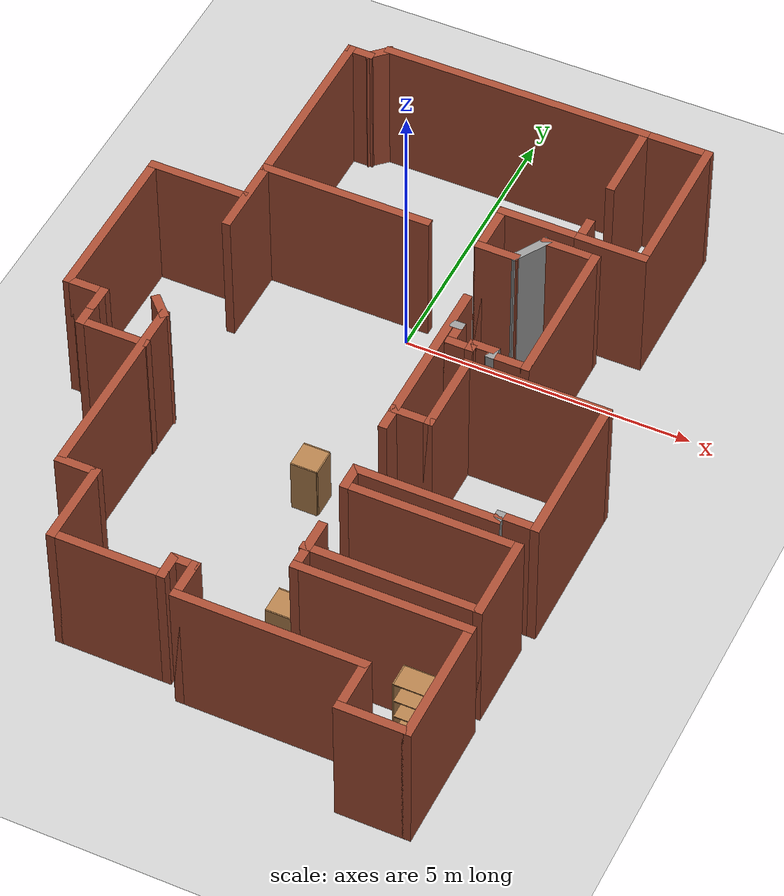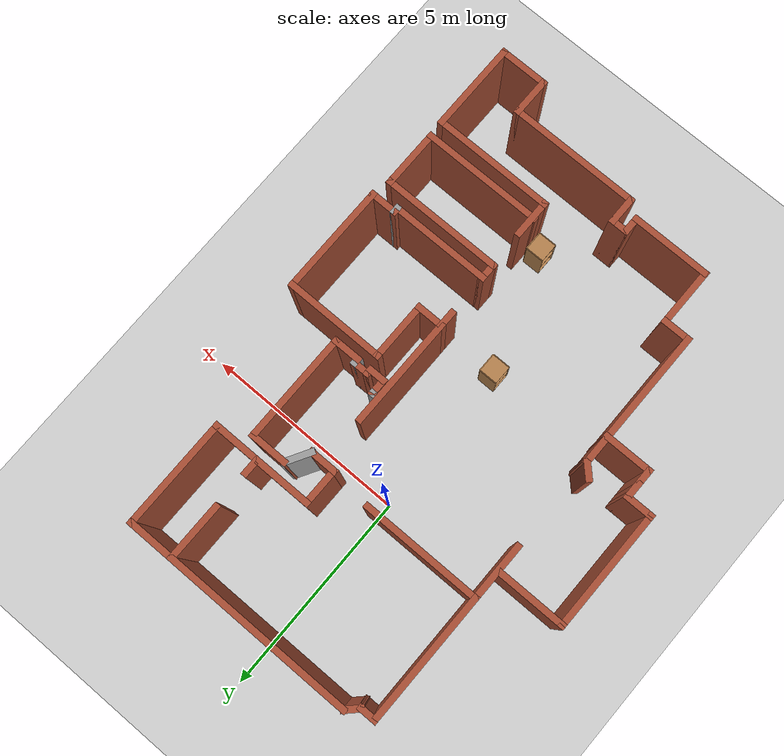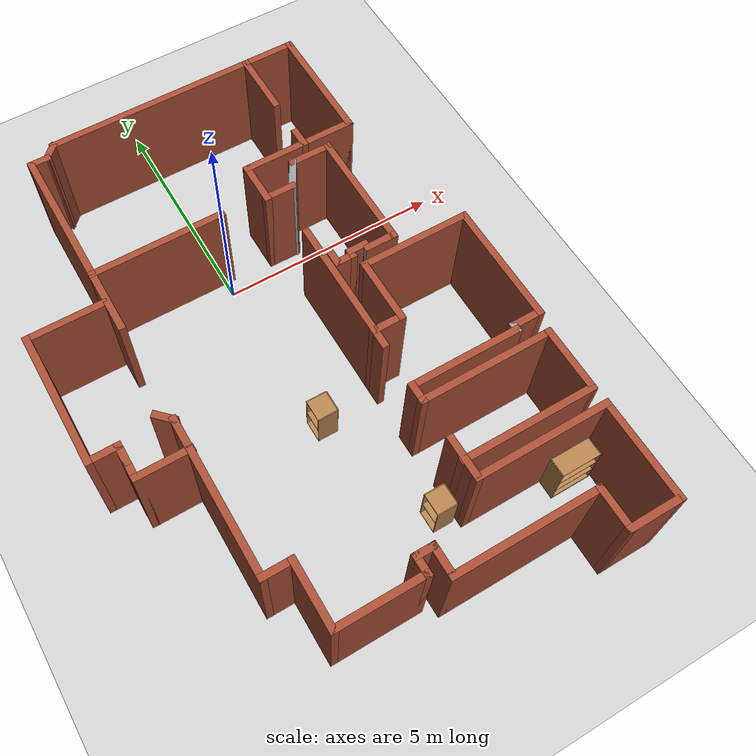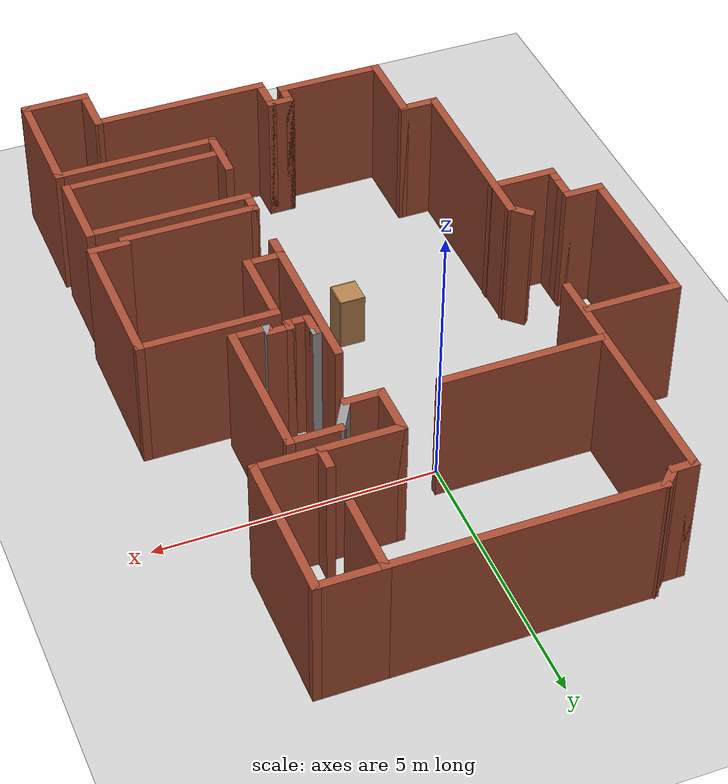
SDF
<sdf version="1.6">
 <world name="default">
  <model name="ground_plane">
   <static>1</static>
   <link name="link">
    <collision name="collision">
     <geometry><plane><normal>0 0 1</normal><size>100 100</size></plane></geometry>
     <surface><friction><ode><mu>100</mu><mu2>50</mu2></ode></friction></surface>
    </collision>
    <visual name="visual">
     <cast_shadows>0</cast_shadows>
     <geometry><plane><normal>0 0 1</normal><size>100 100</size></plane></geometry>
     <material>
      <script><uri>file://media/materials/scripts/gazebo.material</uri><name>Gazebo/Grey</name></script>
     </material>
    </visual>
   </link>
  </model>
  <model name="map_9">
   <pose>0.012902 -2.60359 0 0 -0 0</pose>
   <link name="Wall_0">
    <collision name="Wall_0_Collision">
     <geometry><box><size>3.5 0.15 2.5</size></box></geometry>
     <pose>0 0 1.25 0 -0 0</pose>
    </collision>
    <visual name="Wall_0_Visual">
     <pose>0 0 1.25 0 -0 0</pose>
     <geometry><box><size>3.5 0.15 2.5</size></box></geometry>
     <material>
      <script><uri>file://media/materials/scripts/gazebo.material</uri><name>Gazebo/Bricks</name></script>
      <ambient>1 1 1 1</ambient>
     </material>
     <meta><layer>0</layer></meta>
    </visual>
    <pose>-2.69238 -2.26079 0 0 -0 -1.5708</pose>
   </link>
   <link name="Wall_1">
    <collision name="Wall_1_Collision">
     <geometry><box><size>0.75 0.15 2.5</size></box></geometry>
     <pose>0 0 1.25 0 -0 0</pose>
    </collision>
    <visual name="Wall_1_Visual">
     <pose>0 0 1.25 0 -0 0</pose>
     <geometry><box><size>0.75 0.15 2.5</size></box></geometry>
     <material>
      <script><uri>file://media/materials/scripts/gazebo.material</uri><name>Gazebo/Bricks</name></script>
      <ambient>1 1 1 1</ambient>
     </material>
     <meta><layer>0</layer></meta>
    </visual>
    <pose>-2.39238 -3.93579 0 0 -0 0</pose>
   </link>
   <link name="Wall_10">
    <collision name="Wall_10_Collision">
     <geometry><box><size>1.25 0.15 2.5</size></box></geometry>
     <pose>0 0 1.25 0 -0 0</pose>
    </collision>
    <visual name="Wall_10_Visual">
     <pose>0 0 1.25 0 -0 0</pose>
     <geometry><box><size>1.25 0.15 2.5</size></box></geometry>
     <material>
      <script><uri>file://media/materials/scripts/gazebo.material</uri><name>Gazebo/Bricks</name></script>
      <ambient>1 1 1 1</ambient>
     </material>
     <meta><layer>0</layer></meta>
    </visual>
    <pose>3.75761 -6.38579 0 0 -0 0</pose>
   </link>
   <link name="Wall_11">
    <collision name="Wall_11_Collision">
     <geometry><box><size>2.25 0.15 2.5</size></box></geometry>
     <pose>0 0 1.25 0 -0 0</pose>
    </collision>
    <visual name="Wall_11_Visual">
     <pose>0 0 1.25 0 -0 0</pose>
     <geometry><box><size>2.25 0.15 2.5</size></box></geometry>
     <material>
      <script><uri>file://media/materials/scripts/gazebo.material</uri><name>Gazebo/Bricks</name></script>
      <ambient>1 1 1 1</ambient>
     </material>
     <meta><layer>0</layer></meta>
    </visual>
    <pose>4.30762 -5.33579 0 0 -0 1.5708</pose>
   </link>
   <link name="Wall_12">
    <collision name="Wall_12_Collision">
     <geometry><box><size>3 0.15 2.5</size></box></geometry>
     <pose>0 0 1.25 0 -0 0</pose>
    </collision>
    <visual name="Wall_12_Visual">
     <pose>0 0 1.25 0 -0 0</pose>
     <geometry><box><size>3 0.15 2.5</size></box></geometry>
     <material>
      <script><uri>file://media/materials/scripts/gazebo.material</uri><name>Gazebo/Bricks</name></script>
      <ambient>1 1 1 1</ambient>
     </material>
     <meta><layer>0</layer></meta>
    </visual>
    <pose>2.88261 -4.28579 0 0 -0 3.14159</pose>
   </link>
   <link name="Wall_13">
    <collision name="Wall_13_Collision">
     <geometry><box><size>1 0.15 2.5</size></box></geometry>
     <pose>0 0 1.25 0 -0 0</pose>
    </collision>
    <visual name="Wall_13_Visual">
     <pose>0 0 1.25 0 -0 0</pose>
     <geometry><box><size>1 0.15 2.5</size></box></geometry>
     <material>
      <script><uri>file://media/materials/scripts/gazebo.material</uri><name>Gazebo/Bricks</name></script>
      <ambient>1 1 1 1</ambient>
     </material>
     <meta><layer>0</layer></meta>
    </visual>
    <pose>1.45762 -3.86079 0 0 -0 1.5708</pose>
   </link>
   <link name="Wall_15">
    <collision name="Wall_15_Collision">
     <geometry><box><size>3 0.15 2.5</size></box></geometry>
     <pose>0 0 1.25 0 -0 0</pose>
    </collision>
    <visual name="Wall_15_Visual">
     <pose>0 0 1.25 0 -0 0</pose>
     <geometry><box><size>3 0.15 2.5</size></box></geometry>
     <material>
      <script><uri>file://media/materials/scripts/gazebo.material</uri><name>Gazebo/Bricks</name></script>
      <ambient>1 1 1 1</ambient>
     </material>
     <meta><layer>0</layer></meta>
    </visual>
    <pose>2.85259 -3.89428 0 0 -0 0</pose>
   </link>
   <link name="Wall_16">
    <collision name="Wall_16_Collision">
     <geometry><box><size>1.5 0.15 2.5</size></box></geometry>
     <pose>0 0 1.25 0 -0 0</pose>
    </collision>
    <visual name="Wall_16_Visual">
     <pose>0 0 1.25 0 -0 0</pose>
     <geometry><box><size>1.5 0.15 2.5</size></box></geometry>
     <material>
      <script><uri>file://media/materials/scripts/gazebo.material</uri><name>Gazebo/Bricks</name></script>
      <ambient>1 1 1 1</ambient>
     </material>
     <meta><layer>0</layer></meta>
    </visual>
    <pose>4.2776 -3.21928 0 0 -0 1.5708</pose>
   </link>
   <link name="Wall_17">
    <collision name="Wall_17_Collision">
     <geometry><box><size>3 0.15 2.5</size></box></geometry>
     <pose>0 0 1.25 0 -0 0</pose>
    </collision>
    <visual name="Wall_17_Visual">
     <pose>0 0 1.25 0 -0 0</pose>
     <geometry><box><size>3 0.15 2.5</size></box></geometry>
     <material>
      <script><uri>file://media/materials/scripts/gazebo.material</uri><name>Gazebo/Bricks</name></script>
      <ambient>1 1 1 1</ambient>
     </material>
     <meta><layer>0</layer></meta>
    </visual>
    <pose>2.85259 -2.54428 0 0 -0 3.14159</pose>
   </link>
   <link name="Wall_18">
    <collision name="Wall_18_Collision">
     <geometry><box><size>0.5 0.15 2.5</size></box></geometry>
     <pose>0 0 1.25 0 -0 0</pose>
    </collision>
    <visual name="Wall_18_Visual">
     <pose>0 0 1.25 0 -0 0</pose>
     <geometry><box><size>0.5 0.15 2.5</size></box></geometry>
     <material>
      <script><uri>file://media/materials/scripts/gazebo.material</uri><name>Gazebo/Bricks</name></script>
      <ambient>1 1 1 1</ambient>
     </material>
     <meta><layer>0</layer></meta>
    </visual>
    <pose>1.42759 -2.36928 0 0 -0 1.5708</pose>
   </link>
   <link name="Wall_19">
    <collision name="Wall_19_Collision">
     <geometry><box><size>2.5 0.15 2.5</size></box></geometry>
     <pose>0 0 1.25 0 -0 0</pose>
    </collision>
    <visual name="Wall_19_Visual">
     <pose>0 0 1.25 0 -0 0</pose>
     <geometry><box><size>2.5 0.15 2.5</size></box></geometry>
     <material>
      <script><uri>file://media/materials/scripts/gazebo.material</uri><name>Gazebo/Bricks</name></script>
      <ambient>1 1 1 1</ambient>
     </material>
     <meta><layer>0</layer></meta>
    </visual>
    <pose>2.60259 -2.19428 0 0 -0 0</pose>
   </link>
   <link name="Wall_2">
    <collision name="Wall_2_Collision">
     <geometry><box><size>1.5 0.15 2.5</size></box></geometry>
     <pose>0 0 1.25 0 -0 0</pose>
    </collision>
    <visual name="Wall_2_Visual">
     <pose>0 0 1.25 0 -0 0</pose>
     <geometry><box><size>1.5 0.15 2.5</size></box></geometry>
     <material>
      <script><uri>file://media/materials/scripts/gazebo.material</uri><name>Gazebo/Bricks</name></script>
      <ambient>1 1 1 1</ambient>
     </material>
     <meta><layer>0</layer></meta>
    </visual>
    <pose>-2.09239 -4.61079 0 0 -0 -1.5708</pose>
   </link>
   <link name="Wall_20">
    <collision name="Wall_20_Collision">
     <geometry><box><size>0.25 0.15 2.5</size></box></geometry>
     <pose>0 0 1.25 0 -0 0</pose>
    </collision>
    <visual name="Wall_20_Visual">
     <pose>0 0 1.25 0 -0 0</pose>
     <geometry><box><size>0.25 0.15 2.5</size></box></geometry>
     <material>
      <script><uri>file://media/materials/scripts/gazebo.material</uri><name>Gazebo/Grey</name></script>
      <ambient>1 1 1 1</ambient>
     </material>
     <meta><layer>0</layer></meta>
    </visual>
    <pose>3.7776 -2.14428 0 0 -0 1.5708</pose>
   </link>
   <link name="Wall_21">
    <collision name="Wall_21_Collision">
     <geometry><box><size>0.75 0.15 2.5</size></box></geometry>
     <pose>0 0 1.25 0 -0 0</pose>
    </collision>
    <visual name="Wall_21_Visual">
     <pose>0 0 1.25 0 -0 0</pose>
     <geometry><box><size>0.75 0.15 2.5</size></box></geometry>
     <material>
      <script><uri>file://media/materials/scripts/gazebo.material</uri><name>Gazebo/Bricks</name></script>
      <ambient>1 1 1 1</ambient>
     </material>
     <meta><layer>0</layer></meta>
    </visual>
    <pose>4.07759 -2.09428 0 0 -0 0</pose>
   </link>
   <link name="Wall_22">
    <collision name="Wall_22_Collision">
     <geometry><box><size>2.75 0.15 2.5</size></box></geometry>
     <pose>0 0 1.25 0 -0 0</pose>
    </collision>
    <visual name="Wall_22_Visual">
     <pose>0 0 1.25 0 -0 0</pose>
     <geometry><box><size>2.75 0.15 2.5</size></box></geometry>
     <material>
      <script><uri>file://media/materials/scripts/gazebo.material</uri><name>Gazebo/Bricks</name></script>
      <ambient>1 1 1 1</ambient>
     </material>
     <meta><layer>0</layer></meta>
    </visual>
    <pose>4.3776 -0.794283 0 0 -0 1.5708</pose>
   </link>
   <link name="Wall_23">
    <collision name="Wall_23_Collision">
     <geometry><box><size>2.5 0.15 2.5</size></box></geometry>
     <pose>0 0 1.25 0 -0 0</pose>
    </collision>
    <visual name="Wall_23_Visual">
     <pose>0 0 1.25 0 -0 0</pose>
     <geometry><box><size>2.5 0.15 2.5</size></box></geometry>
     <material>
      <script><uri>file://media/materials/scripts/gazebo.material</uri><name>Gazebo/Bricks</name></script>
      <ambient>1 1 1 1</ambient>
     </material>
     <meta><layer>0</layer></meta>
    </visual>
    <pose>3.2026 0.505717 0 0 -0 3.14159</pose>
   </link>
   <link name="Wall_24">
    <collision name="Wall_24_Collision">
     <geometry><box><size>1.5 0.15 2.5</size></box></geometry>
     <pose>0 0 1.25 0 -0 0</pose>
    </collision>
    <visual name="Wall_24_Visual">
     <pose>0 0 1.25 0 -0 0</pose>
     <geometry><box><size>1.5 0.15 2.5</size></box></geometry>
     <material>
      <script><uri>file://media/materials/scripts/gazebo.material</uri><name>Gazebo/Bricks</name></script>
      <ambient>1 1 1 1</ambient>
     </material>
     <meta><layer>0</layer></meta>
    </visual>
    <pose>2.0276 -0.169283 0 0 -0 -1.5708</pose>
   </link>
   <link name="Wall_25">
    <collision name="Wall_25_Collision">
     <geometry><box><size>0.75 0.15 2.5</size></box></geometry>
     <pose>0 0 1.25 0 -0 0</pose>
    </collision>
    <visual name="Wall_25_Visual">
     <pose>0 0 1.25 0 -0 0</pose>
     <geometry><box><size>0.75 0.15 2.5</size></box></geometry>
     <material>
      <script><uri>file://media/materials/scripts/gazebo.material</uri><name>Gazebo/Bricks</name></script>
      <ambient>1 1 1 1</ambient>
     </material>
     <meta><layer>0</layer></meta>
    </visual>
    <pose>1.72759 -0.844283 0 0 -0 3.14159</pose>
   </link>
   <link name="Wall_26">
    <collision name="Wall_26_Collision">
     <geometry><box><size>0.5 0.15 2.5</size></box></geometry>
     <pose>0 0 1.25 0 -0 0</pose>
    </collision>
    <visual name="Wall_26_Visual">
     <pose>0 0 1.25 0 -0 0</pose>
     <geometry><box><size>0.5 0.15 2.5</size></box></geometry>
     <material>
      <script><uri>file://media/materials/scripts/gazebo.material</uri><name>Gazebo/Bricks</name></script>
      <ambient>1 1 1 1</ambient>
     </material>
     <meta><layer>0</layer></meta>
    </visual>
    <pose>1.42759 -1.01928 0 0 -0 -1.5708</pose>
   </link>
   <link name="Wall_28">
    <collision name="Wall_28_Collision">
     <geometry><box><size>2.75 0.15 2.5</size></box></geometry>
     <pose>0 0 1.25 0 -0 0</pose>
    </collision>
    <visual name="Wall_28_Visual">
     <pose>0 0 1.25 0 -0 0</pose>
     <geometry><box><size>2.75 0.15 2.5</size></box></geometry>
     <material>
      <script><uri>file://media/materials/scripts/gazebo.material</uri><name>Gazebo/Bricks</name></script>
      <ambient>1 1 1 1</ambient>
     </material>
     <meta><layer>0</layer></meta>
    </visual>
    <pose>1.42759 0.455717 0 0 -0 1.5708</pose>
   </link>
   <link name="Wall_3">
    <collision name="Wall_3_Collision">
     <geometry><box><size>2 0.15 2.5</size></box></geometry>
     <pose>0 0 1.25 0 -0 0</pose>
    </collision>
    <visual name="Wall_3_Visual">
     <pose>0 0 1.25 0 -0 0</pose>
     <geometry><box><size>2 0.15 2.5</size></box></geometry>
     <material>
      <script><uri>file://media/materials/scripts/gazebo.material</uri><name>Gazebo/Bricks</name></script>
      <ambient>1 1 1 1</ambient>
     </material>
     <meta><layer>0</layer></meta>
    </visual>
    <pose>-1.16738 -5.28579 0 0 -0 0</pose>
   </link>
   <link name="Wall_30">
    <collision name="Wall_30_Collision">
     <geometry><box><size>0.25 0.15 2.5</size></box></geometry>
     <pose>0 0 1.25 0 -0 0</pose>
    </collision>
    <visual name="Wall_30_Visual">
     <pose>0 0 1.25 0 -0 0</pose>
     <geometry><box><size>0.25 0.15 2.5</size></box></geometry>
     <material>
      <script><uri>file://media/materials/scripts/gazebo.material</uri><name>Gazebo/Grey</name></script>
      <ambient>1 1 1 1</ambient>
     </material>
     <meta><layer>0</layer></meta>
    </visual>
    <pose>1.53794 1.17434 0 0 -0 0</pose>
   </link>
   <link name="Wall_31">
    <collision name="Wall_31_Collision">
     <geometry><box><size>0.5 0.15 2.5</size></box></geometry>
     <pose>0 0 1.25 0 -0 0</pose>
    </collision>
    <visual name="Wall_31_Visual">
     <pose>0 0 1.25 0 -0 0</pose>
     <geometry><box><size>0.5 0.15 2.5</size></box></geometry>
     <material>
      <script><uri>file://media/materials/scripts/gazebo.material</uri><name>Gazebo/Bricks</name></script>
      <ambient>1 1 1 1</ambient>
     </material>
     <meta><layer>0</layer></meta>
    </visual>
    <pose>1.58794 0.999337 0 0 -0 -1.5708</pose>
   </link>
   <link name="Wall_32">
    <collision name="Wall_32_Collision">
     <geometry><box><size>0.5 0.15 2.5</size></box></geometry>
     <pose>0 0 1.25 0 -0 0</pose>
    </collision>
    <visual name="Wall_32_Visual">
     <pose>0 0 1.25 0 -0 0</pose>
     <geometry><box><size>0.5 0.15 2.5</size></box></geometry>
     <material>
      <script><uri>file://media/materials/scripts/gazebo.material</uri><name>Gazebo/Bricks</name></script>
      <ambient>1 1 1 1</ambient>
     </material>
     <meta><layer>0</layer></meta>
    </visual>
    <pose>1.76294 0.824337 0 0 -0 0</pose>
   </link>
   <link name="Wall_33">
    <collision name="Wall_33_Collision">
     <geometry><box><size>0.25 0.15 2.5</size></box></geometry>
     <pose>0 0 1.25 0 -0 0</pose>
    </collision>
    <visual name="Wall_33_Visual">
     <pose>0 0 1.25 0 -0 0</pose>
     <geometry><box><size>0.25 0.15 2.5</size></box></geometry>
     <material>
      <script><uri>file://media/materials/scripts/gazebo.material</uri><name>Gazebo/Bricks</name></script>
      <ambient>1 1 1 1</ambient>
     </material>
     <meta><layer>0</layer></meta>
    </visual>
    <pose>1.93794 0.874337 0 0 -0 1.5708</pose>
   </link>
   <link name="Wall_34">
    <collision name="Wall_34_Collision">
     <geometry><box><size>0.5 0.15 2.5</size></box></geometry>
     <pose>0 0 1.25 0 -0 0</pose>
    </collision>
    <visual name="Wall_34_Visual">
     <pose>0 0 1.25 0 -0 0</pose>
     <geometry><box><size>0.5 0.15 2.5</size></box></geometry>
     <material>
      <script><uri>file://media/materials/scripts/gazebo.material</uri><name>Gazebo/Bricks</name></script>
      <ambient>1 1 1 1</ambient>
     </material>
     <meta><layer>0</layer></meta>
    </visual>
    <pose>2.11294 0.924337 0 0 -0 0</pose>
   </link>
   <link name="Wall_35">
    <collision name="Wall_35_Collision">
     <geometry><box><size>0.25 0.15 2.5</size></box></geometry>
     <pose>0 0 1.25 0 -0 0</pose>
    </collision>
    <visual name="Wall_35_Visual">
     <pose>0 0 1.25 0 -0 0</pose>
     <geometry><box><size>0.25 0.15 2.5</size></box></geometry>
     <material>
      <script><uri>file://media/materials/scripts/gazebo.material</uri><name>Gazebo/Grey</name></script>
      <ambient>1 1 1 1</ambient>
     </material>
     <meta><layer>0</layer></meta>
    </visual>
    <pose>2.28794 0.874337 0 0 -0 -1.5708</pose>
   </link>
   <link name="Wall_36">
    <collision name="Wall_36_Collision">
     <geometry><box><size>0.75 0.15 2.5</size></box></geometry>
     <pose>0 0 1.25 0 -0 0</pose>
    </collision>
    <visual name="Wall_36_Visual">
     <pose>0 0 1.25 0 -0 0</pose>
     <geometry><box><size>0.75 0.15 2.5</size></box></geometry>
     <material>
      <script><uri>file://media/materials/scripts/gazebo.material</uri><name>Gazebo/Bricks</name></script>
      <ambient>1 1 1 1</ambient>
     </material>
     <meta><layer>0</layer></meta>
    </visual>
    <pose>2.58794 0.824337 0 0 -0 0</pose>
   </link>
   <link name="Wall_37">
    <collision name="Wall_37_Collision">
     <geometry><box><size>2.75 0.15 2.5</size></box></geometry>
     <pose>0 0 1.25 0 -0 0</pose>
    </collision>
    <visual name="Wall_37_Visual">
     <pose>0 0 1.25 0 -0 0</pose>
     <geometry><box><size>2.75 0.15 2.5</size></box></geometry>
     <material>
      <script><uri>file://media/materials/scripts/gazebo.material</uri><name>Gazebo/Bricks</name></script>
      <ambient>1 1 1 1</ambient>
     </material>
     <meta><layer>0</layer></meta>
    </visual>
    <pose>2.88794 2.12434 0 0 -0 1.5708</pose>
   </link>
   <link name="Wall_38">
    <collision name="Wall_38_Collision">
     <geometry><box><size>1 0.15 2.5</size></box></geometry>
     <pose>0 0 1.25 0 -0 0</pose>
    </collision>
    <visual name="Wall_38_Visual">
     <pose>0 0 1.25 0 -0 0</pose>
     <geometry><box><size>1 0.15 2.5</size></box></geometry>
     <material>
      <script><uri>file://media/materials/scripts/gazebo.material</uri><name>Gazebo/Bricks</name></script>
      <ambient>1 1 1 1</ambient>
     </material>
     <meta><layer>0</layer></meta>
    </visual>
    <pose>2.46294 3.42434 0 0 -0 3.14159</pose>
   </link>
   <link name="Wall_39">
    <collision name="Wall_39_Collision">
     <geometry><box><size>0.75 0.15 2.5</size></box></geometry>
     <pose>0 0 1.25 0 -0 0</pose>
    </collision>
    <visual name="Wall_39_Visual">
     <pose>0 0 1.25 0 -0 0</pose>
     <geometry><box><size>0.75 0.15 2.5</size></box></geometry>
     <material>
      <script><uri>file://media/materials/scripts/gazebo.material</uri><name>Gazebo/Grey</name></script>
      <ambient>1 1 1 1</ambient>
     </material>
     <meta><layer>0</layer></meta>
    </visual>
    <pose>1.88794 3.16453 0 0 -0 -2.0944</pose>
   </link>
   <link name="Wall_40">
    <collision name="Wall_40_Collision">
     <geometry><box><size>0.75 0.15 2.5</size></box></geometry>
     <pose>0 0 1.25 0 -0 0</pose>
    </collision>
    <visual name="Wall_40_Visual">
     <pose>0 0 1.25 0 -0 0</pose>
     <geometry><box><size>0.75 0.15 2.5</size></box></geometry>
     <material>
      <script><uri>file://media/materials/scripts/gazebo.material</uri><name>Gazebo/Bricks</name></script>
      <ambient>1 1 1 1</ambient>
     </material>
     <meta><layer>0</layer></meta>
    </visual>
    <pose>1.43794 2.90472 0 0 -0 3.14159</pose>
   </link>
   <link name="Wall_42">
    <collision name="Wall_42_Collision">
     <geometry><box><size>1 0.15 2.5</size></box></geometry>
     <pose>0 0 1.25 0 -0 0</pose>
    </collision>
    <visual name="Wall_42_Visual">
     <pose>0 0 1.25 0 -0 0</pose>
     <geometry><box><size>1 0.15 2.5</size></box></geometry>
     <material>
      <script><uri>file://media/materials/scripts/gazebo.material</uri><name>Gazebo/Bricks</name></script>
      <ambient>1 1 1 1</ambient>
     </material>
     <meta><layer>0</layer></meta>
    </visual>
    <pose>1.13794 3.32972 0 0 -0 1.5708</pose>
   </link>
   <link name="Wall_43">
    <collision name="Wall_43_Collision">
     <geometry><box><size>1.5 0.15 2.5</size></box></geometry>
     <pose>0 0 1.25 0 -0 0</pose>
    </collision>
    <visual name="Wall_43_Visual">
     <pose>0 0 1.25 0 -0 0</pose>
     <geometry><box><size>1.5 0.15 2.5</size></box></geometry>
     <material>
      <script><uri>file://media/materials/scripts/gazebo.material</uri><name>Gazebo/Bricks</name></script>
      <ambient>1 1 1 1</ambient>
     </material>
     <meta><layer>0</layer></meta>
    </visual>
    <pose>1.81294 3.75472 0 0 -0 0</pose>
   </link>
   <link name="Wall_44">
    <collision name="Wall_44_Collision">
     <geometry><box><size>0.5 0.15 2.5</size></box></geometry>
     <pose>0 0 1.25 0 -0 0</pose>
    </collision>
    <visual name="Wall_44_Visual">
     <pose>0 0 1.25 0 -0 0</pose>
     <geometry><box><size>0.5 0.15 2.5</size></box></geometry>
     <material>
      <script><uri>file://media/materials/scripts/gazebo.material</uri><name>Gazebo/Bricks</name></script>
      <ambient>1 1 1 1</ambient>
     </material>
     <meta><layer>0</layer></meta>
    </visual>
    <pose>2.48794 3.92972 0 0 -0 1.5708</pose>
   </link>
   <link name="Wall_46">
    <collision name="Wall_46_Collision">
     <geometry><box><size>1.25 0.15 2.5</size></box></geometry>
     <pose>0 0 1.25 0 -0 0</pose>
    </collision>
    <visual name="Wall_46_Visual">
     <pose>0 0 1.25 0 -0 0</pose>
     <geometry><box><size>1.25 0.15 2.5</size></box></geometry>
     <material>
      <script><uri>file://media/materials/scripts/gazebo.material</uri><name>Gazebo/Bricks</name></script>
      <ambient>1 1 1 1</ambient>
     </material>
     <meta><layer>0</layer></meta>
    </visual>
    <pose>3.03794 3.75472 0 0 -0 0</pose>
   </link>
   <link name="Wall_47">
    <collision name="Wall_47_Collision">
     <geometry><box><size>2.75 0.15 2.5</size></box></geometry>
     <pose>0 0 1.25 0 -0 0</pose>
    </collision>
    <visual name="Wall_47_Visual">
     <pose>0 0 1.25 0 -0 0</pose>
     <geometry><box><size>2.75 0.15 2.5</size></box></geometry>
     <material>
      <script><uri>file://media/materials/scripts/gazebo.material</uri><name>Gazebo/Bricks</name></script>
      <ambient>1 1 1 1</ambient>
     </material>
     <meta><layer>0</layer></meta>
    </visual>
    <pose>3.58794 5.05472 0 0 -0 1.5708</pose>
   </link>
   <link name="Wall_48">
    <collision name="Wall_48_Collision">
     <geometry><box><size>1.25 0.15 2.5</size></box></geometry>
     <pose>0 0 1.25 0 -0 0</pose>
    </collision>
    <visual name="Wall_48_Visual">
     <pose>0 0 1.25 0 -0 0</pose>
     <geometry><box><size>1.25 0.15 2.5</size></box></geometry>
     <material>
      <script><uri>file://media/materials/scripts/gazebo.material</uri><name>Gazebo/Bricks</name></script>
      <ambient>1 1 1 1</ambient>
     </material>
     <meta><layer>0</layer></meta>
    </visual>
    <pose>3.03794 6.35472 0 0 -0 3.14159</pose>
   </link>
   <link name="Wall_49">
    <collision name="Wall_49_Collision">
     <geometry><box><size>1.5 0.15 2.5</size></box></geometry>
     <pose>0 0 1.25 0 -0 0</pose>
    </collision>
    <visual name="Wall_49_Visual">
     <pose>0 0 1.25 0 -0 0</pose>
     <geometry><box><size>1.5 0.15 2.5</size></box></geometry>
     <material>
      <script><uri>file://media/materials/scripts/gazebo.material</uri><name>Gazebo/Bricks</name></script>
      <ambient>1 1 1 1</ambient>
     </material>
     <meta><layer>0</layer></meta>
    </visual>
    <pose>2.48794 5.67972 0 0 -0 -1.5708</pose>
   </link>
   <link name="Wall_5">
    <collision name="Wall_5_Collision">
     <geometry><box><size>0.5 0.15 2.5</size></box></geometry>
     <pose>0 0 1.25 0 -0 0</pose>
    </collision>
    <visual name="Wall_5_Visual">
     <pose>0 0 1.25 0 -0 0</pose>
     <geometry><box><size>0.5 0.15 2.5</size></box></geometry>
     <material>
      <script><uri>file://media/materials/scripts/gazebo.material</uri><name>Gazebo/Bricks</name></script>
      <ambient>1 1 1 1</ambient>
     </material>
     <meta><layer>0</layer></meta>
    </visual>
    <pose>-0.242385 -5.11079 0 0 -0 1.5708</pose>
   </link>
   <link name="Wall_51">
    <collision name="Wall_51_Collision">
     <geometry><box><size>4.75 0.15 2.5</size></box></geometry>
     <pose>0 0 1.25 0 -0 0</pose>
    </collision>
    <visual name="Wall_51_Visual">
     <pose>0 0 1.25 0 -0 0</pose>
     <geometry><box><size>4.75 0.15 2.5</size></box></geometry>
     <material>
      <script><uri>file://media/materials/scripts/gazebo.material</uri><name>Gazebo/Bricks</name></script>
      <ambient>1 1 1 1</ambient>
     </material>
     <meta><layer>0</layer></meta>
    </visual>
    <pose>0.187936 6.35472 0 0 -0 3.14159</pose>
   </link>
   <link name="Wall_52">
    <collision name="Wall_52_Collision">
     <geometry><box><size>0.5 0.15 2.5</size></box></geometry>
     <pose>0 0 1.25 0 -0 0</pose>
    </collision>
    <visual name="Wall_52_Visual">
     <pose>0 0 1.25 0 -0 0</pose>
     <geometry><box><size>0.5 0.15 2.5</size></box></geometry>
     <material>
      <script><uri>file://media/materials/scripts/gazebo.material</uri><name>Gazebo/Bricks</name></script>
      <ambient>1 1 1 1</ambient>
     </material>
     <meta><layer>0</layer></meta>
    </visual>
    <pose>-2.23581 6.23098 0 0 -0 -2.35619</pose>
   </link>
   <link name="Wall_53">
    <collision name="Wall_53_Collision">
     <geometry><box><size>0.5 0.15 2.5</size></box></geometry>
     <pose>0 0 1.25 0 -0 0</pose>
    </collision>
    <visual name="Wall_53_Visual">
     <pose>0 0 1.25 0 -0 0</pose>
     <geometry><box><size>0.5 0.15 2.5</size></box></geometry>
     <material>
      <script><uri>file://media/materials/scripts/gazebo.material</uri><name>Gazebo/Bricks</name></script>
      <ambient>1 1 1 1</ambient>
     </material>
     <meta><layer>0</layer></meta>
    </visual>
    <pose>-2.53455 6.10723 0 0 -0 3.14159</pose>
   </link>
   <link name="Wall_54">
    <collision name="Wall_54_Collision">
     <geometry><box><size>3.25 0.15 2.5</size></box></geometry>
     <pose>0 0 1.25 0 -0 0</pose>
    </collision>
    <visual name="Wall_54_Visual">
     <pose>0 0 1.25 0 -0 0</pose>
     <geometry><box><size>3.25 0.15 2.5</size></box></geometry>
     <material>
      <script><uri>file://media/materials/scripts/gazebo.material</uri><name>Gazebo/Bricks</name></script>
      <ambient>1 1 1 1</ambient>
     </material>
     <meta><layer>0</layer></meta>
    </visual>
    <pose>-2.70955 4.55723 0 0 -0 -1.5708</pose>
   </link>
   <link name="Wall_55">
    <collision name="Wall_55_Collision">
     <geometry><box><size>3 0.15 2.5</size></box></geometry>
     <pose>0 0 1.25 0 -0 0</pose>
    </collision>
    <visual name="Wall_55_Visual">
     <pose>0 0 1.25 0 -0 0</pose>
     <geometry><box><size>3 0.15 2.5</size></box></geometry>
     <material>
      <script><uri>file://media/materials/scripts/gazebo.material</uri><name>Gazebo/Bricks</name></script>
      <ambient>1 1 1 1</ambient>
     </material>
     <meta><layer>0</layer></meta>
    </visual>
    <pose>-1.28455 3.00723 0 0 -0 0</pose>
   </link>
   <link name="Wall_57">
    <collision name="Wall_57_Collision">
     <geometry><box><size>1.5 0.15 2.5</size></box></geometry>
     <pose>0 0 1.25 0 -0 0</pose>
    </collision>
    <visual name="Wall_57_Visual">
     <pose>0 0 1.25 0 -0 0</pose>
     <geometry><box><size>1.5 0.15 2.5</size></box></geometry>
     <material>
      <script><uri>file://media/materials/scripts/gazebo.material</uri><name>Gazebo/Bricks</name></script>
      <ambient>1 1 1 1</ambient>
     </material>
     <meta><layer>0</layer></meta>
    </visual>
    <pose>-2.70955 2.33223 0 0 -0 -1.5708</pose>
   </link>
   <link name="Wall_59">
    <collision name="Wall_59_Collision">
     <geometry><box><size>1.75 0.15 2.5</size></box></geometry>
     <pose>0 0 1.25 0 -0 0</pose>
    </collision>
    <visual name="Wall_59_Visual">
     <pose>0 0 1.25 0 -0 0</pose>
     <geometry><box><size>1.75 0.15 2.5</size></box></geometry>
     <material>
      <script><uri>file://media/materials/scripts/gazebo.material</uri><name>Gazebo/Bricks</name></script>
      <ambient>1 1 1 1</ambient>
     </material>
     <meta><layer>0</layer></meta>
    </visual>
    <pose>-3.5776 2.29194 0 0 -0 3.14159</pose>
   </link>
   <link name="Wall_6">
    <collision name="Wall_6_Collision">
     <geometry><box><size>0.5 0.15 2.5</size></box></geometry>
     <pose>0 0 1.25 0 -0 0</pose>
    </collision>
    <visual name="Wall_6_Visual">
     <pose>0 0 1.25 0 -0 0</pose>
     <geometry><box><size>0.5 0.15 2.5</size></box></geometry>
     <material>
      <script><uri>file://media/materials/scripts/gazebo.material</uri><name>Gazebo/Bricks</name></script>
      <ambient>1 1 1 1</ambient>
     </material>
     <meta><layer>0</layer></meta>
    </visual>
    <pose>-0.067385 -4.93579 0 0 -0 0</pose>
   </link>
   <link name="Wall_60">
    <collision name="Wall_60_Collision">
     <geometry><box><size>3 0.15 2.5</size></box></geometry>
     <pose>0 0 1.25 0 -0 0</pose>
    </collision>
    <visual name="Wall_60_Visual">
     <pose>0 0 1.25 0 -0 0</pose>
     <geometry><box><size>3 0.15 2.5</size></box></geometry>
     <material>
      <script><uri>file://media/materials/scripts/gazebo.material</uri><name>Gazebo/Bricks</name></script>
      <ambient>1 1 1 1</ambient>
     </material>
     <meta><layer>0</layer></meta>
    </visual>
    <pose>-4.3776 0.86694 0 0 -0 -1.5708</pose>
   </link>
   <link name="Wall_61">
    <collision name="Wall_61_Collision">
     <geometry><box><size>0.75 0.15 2.5</size></box></geometry>
     <pose>0 0 1.25 0 -0 0</pose>
    </collision>
    <visual name="Wall_61_Visual">
     <pose>0 0 1.25 0 -0 0</pose>
     <geometry><box><size>0.75 0.15 2.5</size></box></geometry>
     <material>
      <script><uri>file://media/materials/scripts/gazebo.material</uri><name>Gazebo/Bricks</name></script>
      <ambient>1 1 1 1</ambient>
     </material>
     <meta><layer>0</layer></meta>
    </visual>
    <pose>-4.07759 -0.55806 0 0 -0 0</pose>
   </link>
   <link name="Wall_62">
    <collision name="Wall_62_Collision">
     <geometry><box><size>0.5 0.15 2.5</size></box></geometry>
     <pose>0 0 1.25 0 -0 0</pose>
    </collision>
    <visual name="Wall_62_Visual">
     <pose>0 0 1.25 0 -0 0</pose>
     <geometry><box><size>0.5 0.15 2.5</size></box></geometry>
     <material>
      <script><uri>file://media/materials/scripts/gazebo.material</uri><name>Gazebo/Bricks</name></script>
      <ambient>1 1 1 1</ambient>
     </material>
     <meta><layer>0</layer></meta>
    </visual>
    <pose>-3.7776 -0.73306 0 0 -0 -1.5708</pose>
   </link>
   <link name="Wall_63">
    <collision name="Wall_63_Collision">
     <geometry><box><size>0.5 0.15 2.5</size></box></geometry>
     <pose>0 0 1.25 0 -0 0</pose>
    </collision>
    <visual name="Wall_63_Visual">
     <pose>0 0 1.25 0 -0 0</pose>
     <geometry><box><size>0.5 0.15 2.5</size></box></geometry>
     <material>
      <script><uri>file://media/materials/scripts/gazebo.material</uri><name>Gazebo/Bricks</name></script>
      <ambient>1 1 1 1</ambient>
     </material>
     <meta><layer>0</layer></meta>
    </visual>
    <pose>-3.7776 -1.08306 0 0 -0 -1.5708</pose>
   </link>
   <link name="Wall_64">
    <collision name="Wall_64_Collision">
     <geometry><box><size>1.25 0.15 2.5</size></box></geometry>
     <pose>0 0 1.25 0 -0 0</pose>
    </collision>
    <visual name="Wall_64_Visual">
     <pose>0 0 1.25 0 -0 0</pose>
     <geometry><box><size>1.25 0.15 2.5</size></box></geometry>
     <material>
      <script><uri>file://media/materials/scripts/gazebo.material</uri><name>Gazebo/Bricks</name></script>
      <ambient>1 1 1 1</ambient>
     </material>
     <meta><layer>0</layer></meta>
    </visual>
    <pose>-3.22759 -1.25806 0 0 -0 0</pose>
   </link>
   <link name="Wall_66">
    <collision name="Wall_66_Collision">
     <geometry><box><size>0.5 0.15 2.5</size></box></geometry>
     <pose>0 0 1.25 0 -0 0</pose>
    </collision>
    <visual name="Wall_66_Visual">
     <pose>0 0 1.25 0 -0 0</pose>
     <geometry><box><size>0.5 0.15 2.5</size></box></geometry>
     <material>
      <script><uri>file://media/materials/scripts/gazebo.material</uri><name>Gazebo/Bricks</name></script>
      <ambient>1 1 1 1</ambient>
     </material>
     <meta><layer>0</layer></meta>
    </visual>
    <pose>-2.81613 -0.462044 0 0 -0 2.35619</pose>
   </link>
   <link name="Wall_7">
    <collision name="Wall_7_Collision">
     <geometry><box><size>0.75 0.15 2.5</size></box></geometry>
     <pose>0 0 1.25 0 -0 0</pose>
    </collision>
    <visual name="Wall_7_Visual">
     <pose>0 0 1.25 0 -0 0</pose>
     <geometry><box><size>0.75 0.15 2.5</size></box></geometry>
     <material>
      <script><uri>file://media/materials/scripts/gazebo.material</uri><name>Gazebo/Bricks</name></script>
      <ambient>1 1 1 1</ambient>
     </material>
     <meta><layer>0</layer></meta>
    </visual>
    <pose>0.107615 -5.23579 0 0 -0 -1.5708</pose>
   </link>
   <link name="Wall_8">
    <collision name="Wall_8_Collision">
     <geometry><box><size>3.25 0.15 2.5</size></box></geometry>
     <pose>0 0 1.25 0 -0 0</pose>
    </collision>
    <visual name="Wall_8_Visual">
     <pose>0 0 1.25 0 -0 0</pose>
     <geometry><box><size>3.25 0.15 2.5</size></box></geometry>
     <material>
      <script><uri>file://media/materials/scripts/gazebo.material</uri><name>Gazebo/Bricks</name></script>
      <ambient>1 1 1 1</ambient>
     </material>
     <meta><layer>0</layer></meta>
    </visual>
    <pose>1.65762 -5.53579 0 0 -0 0</pose>
   </link>
   <link name="Wall_9">
    <collision name="Wall_9_Collision">
     <geometry><box><size>1 0.15 2.5</size></box></geometry>
     <pose>0 0 1.25 0 -0 0</pose>
    </collision>
    <visual name="Wall_9_Visual">
     <pose>0 0 1.25 0 -0 0</pose>
     <geometry><box><size>1 0.15 2.5</size></box></geometry>
     <material>
      <script><uri>file://media/materials/scripts/gazebo.material</uri><name>Gazebo/Bricks</name></script>
      <ambient>1 1 1 1</ambient>
     </material>
     <meta><layer>0</layer></meta>
    </visual>
    <pose>3.20762 -5.96079 0 0 -0 -1.5708</pose>
   </link>
   <static>1</static>
  </model>
  <model name="cabinet_1">
   <static>1</static>
   <link name="cabinet_bottom_plate">
    <inertial>
     <pose>0 0 -1 0 -0 0</pose>
     <inertia><ixx>2.05</ixx><ixy>0</ixy><ixz>0</ixz><iyy>2.05</iyy><iyz>0</iyz><izz>2.05</izz></inertia>
     <mass>25</mass>
    </inertial>
    <collision name="cabinet_bottom_plate_geom">
     <pose>0 0 0.01 0 -0 0</pose>
     <geometry><box><size>0.45 0.45 0.02</size></box></geometry>
    </collision>
    <visual name="cabinet_bottom_plate_geom_visual">
     <pose>0 0 0.01 0 -0 0</pose>
     <geometry><box><size>0.45 0.45 0.02</size></box></geometry>
     <material>
      <script><uri>file://media/materials/scripts/gazebo.material</uri><name>Gazebo/Wood</name></script>
     </material>
    </visual>
    <collision name="cabinet_bottom_plate_geom_cabinet_back_plate">
     <pose>0.235 0 0.51 0 -0 0</pose>
     <geometry><box><size>0.02 0.45 1.02</size></box></geometry>
    </collision>
    <visual name="cabinet_bottom_plate_geom_cabinet_back_plate_visual">
     <pose>0.235 0 0.51 0 -0 0</pose>
     <geometry><box><size>0.02 0.45 1.02</size></box></geometry>
     <material>
      <script><uri>file://media/materials/scripts/gazebo.material</uri><name>Gazebo/Wood</name></script>
     </material>
    </visual>
    <collision name="cabinet_bottom_plate_geom_cabinet_left_plate">
     <pose>0 0.235 0.51 0 -0 0</pose>
     <geometry><box><size>0.45 0.02 1.02</size></box></geometry>
    </collision>
    <visual name="cabinet_bottom_plate_geom_cabinet_left_plate_visual">
     <pose>0 0.235 0.51 0 -0 0</pose>
     <geometry><box><size>0.45 0.02 1.02</size></box></geometry>
     <material>
      <script><uri>file://media/materials/scripts/gazebo.material</uri><name>Gazebo/Wood</name></script>
     </material>
    </visual>
    <collision name="cabinet_bottom_plate_geom_cabinet_middle_plate">
     <pose>0 0 0.51 0 -0 0</pose>
     <geometry><box><size>0.45 0.45 0.02</size></box></geometry>
    </collision>
    <visual name="cabinet_bottom_plate_geom_cabinet_middle_plate_visual">
     <pose>0 0 0.51 0 -0 0</pose>
     <geometry><box><size>0.45 0.45 0.02</size></box></geometry>
     <material>
      <script><uri>file://media/materials/scripts/gazebo.material</uri><name>Gazebo/Wood</name></script>
     </material>
    </visual>
    <collision name="cabinet_bottom_plate_geom_cabinet_right_plate">
     <pose>0 -0.235 0.51 0 -0 0</pose>
     <geometry><box><size>0.45 0.02 1.02</size></box></geometry>
    </collision>
    <visual name="cabinet_bottom_plate_geom_cabinet_right_plate_visual">
     <pose>0 -0.235 0.51 0 -0 0</pose>
     <geometry><box><size>0.45 0.02 1.02</size></box></geometry>
     <material>
      <script><uri>file://media/materials/scripts/gazebo.material</uri><name>Gazebo/Wood</name></script>
     </material>
    </visual>
    <collision name="cabinet_bottom_plate_geom_cabinet_top_plate">
     <pose>0 0 1.01 0 -0 0</pose>
     <geometry><box><size>0.45 0.45 0.02</size></box></geometry>
    </collision>
    <visual name="cabinet_bottom_plate_geom_cabinet_top_plate_visual">
     <pose>0 0 1.01 0 -0 0</pose>
     <geometry><box><size>0.45 0.45 0.02</size></box></geometry>
     <material>
      <script><uri>file://media/materials/scripts/gazebo.material</uri><name>Gazebo/Wood</name></script>
     </material>
    </visual>
   </link>
   <pose>0.114078 -3.73009 0 0 -0 0</pose>
  </model>
  <model name="bookshelf_0">
   <static>1</static>
   <link name="link">
    <inertial><mass>1</mass></inertial>
    <collision name="back">
     <pose>0 0.005 0.6 0 -0 0</pose>
     <geometry><box><size>0.9 0.01 1.2</size></box></geometry>
    </collision>
    <visual name="visual1">
     <pose>0 0.005 0.6 0 -0 0</pose>
     <geometry><box><size>0.9 0.01 1.2</size></box></geometry>
     <material>
      <script><uri>file://media/materials/scripts/gazebo.material</uri><name>Gazebo/Wood</name></script>
     </material>
    </visual>
    <collision name="left_side">
     <pose>0.45 -0.195 0.6 0 -0 0</pose>
     <geometry><box><size>0.02 0.4 1.2</size></box></geometry>
    </collision>
    <visual name="visual2">
     <pose>0.45 -0.195 0.6 0 -0 0</pose>
     <geometry><box><size>0.02 0.4 1.2</size></box></geometry>
     <material>
      <script><uri>file://media/materials/scripts/gazebo.material</uri><name>Gazebo/Wood</name></script>
     </material>
    </visual>
    <collision name="right_side">
     <pose>-0.45 -0.195 0.6 0 -0 0</pose>
     <geometry><box><size>0.02 0.4 1.2</size></box></geometry>
    </collision>
    <visual name="visual3">
     <pose>-0.45 -0.195 0.6 0 -0 0</pose>
     <geometry><box><size>0.02 0.4 1.2</size></box></geometry>
     <material>
      <script><uri>file://media/materials/scripts/gazebo.material</uri><name>Gazebo/Wood</name></script>
     </material>
    </visual>
    <collision name="bottom">
     <pose>0 -0.195 0.03 0 -0 0</pose>
     <geometry><box><size>0.88 0.4 0.06</size></box></geometry>
    </collision>
    <visual name="visual4">
     <pose>0 -0.195 0.03 0 -0 0</pose>
     <geometry><box><size>0.88 0.4 0.06</size></box></geometry>
     <material>
      <script><uri>file://media/materials/scripts/gazebo.material</uri><name>Gazebo/Wood</name></script>
     </material>
    </visual>
    <collision name="top">
     <pose>0 -0.195 1.19 0 -0 0</pose>
     <geometry><box><size>0.88 0.4 0.02</size></box></geometry>
    </collision>
    <visual name="visual5">
     <pose>0 -0.195 1.19 0 -0 0</pose>
     <geometry><box><size>0.88 0.4 0.02</size></box></geometry>
     <material>
      <script><uri>file://media/materials/scripts/gazebo.material</uri><name>Gazebo/Wood</name></script>
     </material>
    </visual>
    <collision name="low_shelf">
     <pose>0 -0.195 0.43 0 -0 0</pose>
     <geometry><box><size>0.88 0.4 0.02</size></box></geometry>
    </collision>
    <visual name="visual6">
     <pose>0 -0.195 0.43 0 -0 0</pose>
     <geometry><box><size>0.88 0.4 0.02</size></box></geometry>
     <material>
      <script><uri>file://media/materials/scripts/gazebo.material</uri><name>Gazebo/Wood</name></script>
     </material>
    </visual>
    <collision name="high_shelf">
     <pose>0 -0.195 0.8 0 -0 0</pose>
     <geometry><box><size>0.88 0.4 0.02</size></box></geometry>
    </collision>
    <visual name="visual7">
     <pose>0 -0.195 0.8 0 -0 0</pose>
     <geometry><box><size>0.88 0.4 0.02</size></box></geometry>
     <material>
      <script><uri>file://media/materials/scripts/gazebo.material</uri><name>Gazebo/Wood</name></script>
     </material>
    </visual>
   </link>
   <pose>3.74225 -6.97473 0 0 -0 0</pose>
  </model>
  <model name="cabinet_5">
   <static>1</static>
   <link name="cabinet_bottom_plate">
    <inertial>
     <pose>0 0 -1 0 -0 0</pose>
     <inertia><ixx>2.05</ixx><ixy>0</ixy><ixz>0</ixz><iyy>2.05</iyy><iyz>0</iyz><izz>2.05</izz></inertia>
     <mass>25</mass>
    </inertial>
    <collision name="cabinet_bottom_plate_geom">
     <pose>0 0 0.01 0 -0 0</pose>
     <geometry><box><size>0.45 0.45 0.02</size></box></geometry>
    </collision>
    <visual name="cabinet_bottom_plate_geom_visual">
     <pose>0 0 0.01 0 -0 0</pose>
     <geometry><box><size>0.45 0.45 0.02</size></box></geometry>
     <material>
      <script><uri>file://media/materials/scripts/gazebo.material</uri><name>Gazebo/Wood</name></script>
     </material>
    </visual>
    <collision name="cabinet_bottom_plate_geom_cabinet_back_plate">
     <pose>0.235 0 0.51 0 -0 0</pose>
     <geometry><box><size>0.02 0.45 1.02</size></box></geometry>
    </collision>
    <visual name="cabinet_bottom_plate_geom_cabinet_back_plate_visual">
     <pose>0.235 0 0.51 0 -0 0</pose>
     <geometry><box><size>0.02 0.45 1.02</size></box></geometry>
     <material>
      <script><uri>file://media/materials/scripts/gazebo.material</uri><name>Gazebo/Wood</name></script>
     </material>
    </visual>
    <collision name="cabinet_bottom_plate_geom_cabinet_left_plate">
     <pose>0 0.235 0.51 0 -0 0</pose>
     <geometry><box><size>0.45 0.02 1.02</size></box></geometry>
    </collision>
    <visual name="cabinet_bottom_plate_geom_cabinet_left_plate_visual">
     <pose>0 0.235 0.51 0 -0 0</pose>
     <geometry><box><size>0.45 0.02 1.02</size></box></geometry>
     <material>
      <script><uri>file://media/materials/scripts/gazebo.material</uri><name>Gazebo/Wood</name></script>
     </material>
    </visual>
    <collision name="cabinet_bottom_plate_geom_cabinet_middle_plate">
     <pose>0 0 0.51 0 -0 0</pose>
     <geometry><box><size>0.45 0.45 0.02</size></box></geometry>
    </collision>
    <visual name="cabinet_bottom_plate_geom_cabinet_middle_plate_visual">
     <pose>0 0 0.51 0 -0 0</pose>
     <geometry><box><size>0.45 0.45 0.02</size></box></geometry>
     <material>
      <script><uri>file://media/materials/scripts/gazebo.material</uri><name>Gazebo/Wood</name></script>
     </material>
    </visual>
    <collision name="cabinet_bottom_plate_geom_cabinet_right_plate">
     <pose>0 -0.235 0.51 0 -0 0</pose>
     <geometry><box><size>0.45 0.02 1.02</size></box></geometry>
    </collision>
    <visual name="cabinet_bottom_plate_geom_cabinet_right_plate_visual">
     <pose>0 -0.235 0.51 0 -0 0</pose>
     <geometry><box><size>0.45 0.02 1.02</size></box></geometry>
     <material>
      <script><uri>file://media/materials/scripts/gazebo.material</uri><name>Gazebo/Wood</name></script>
     </material>
    </visual>
    <collision name="cabinet_bottom_plate_geom_cabinet_top_plate">
     <pose>0 0 1.01 0 -0 0</pose>
     <geometry><box><size>0.45 0.45 0.02</size></box></geometry>
    </collision>
    <visual name="cabinet_bottom_plate_geom_cabinet_top_plate_visual">
     <pose>0 0 1.01 0 -0 0</pose>
     <geometry><box><size>0.45 0.45 0.02</size></box></geometry>
     <material>
      <script><uri>file://media/materials/scripts/gazebo.material</uri><name>Gazebo/Wood</name></script>
     </material>
    </visual>
   </link>
   <pose>1.09079 -6.53774 0 0 -0 0</pose>
  </model>
 </world>
</sdf>
